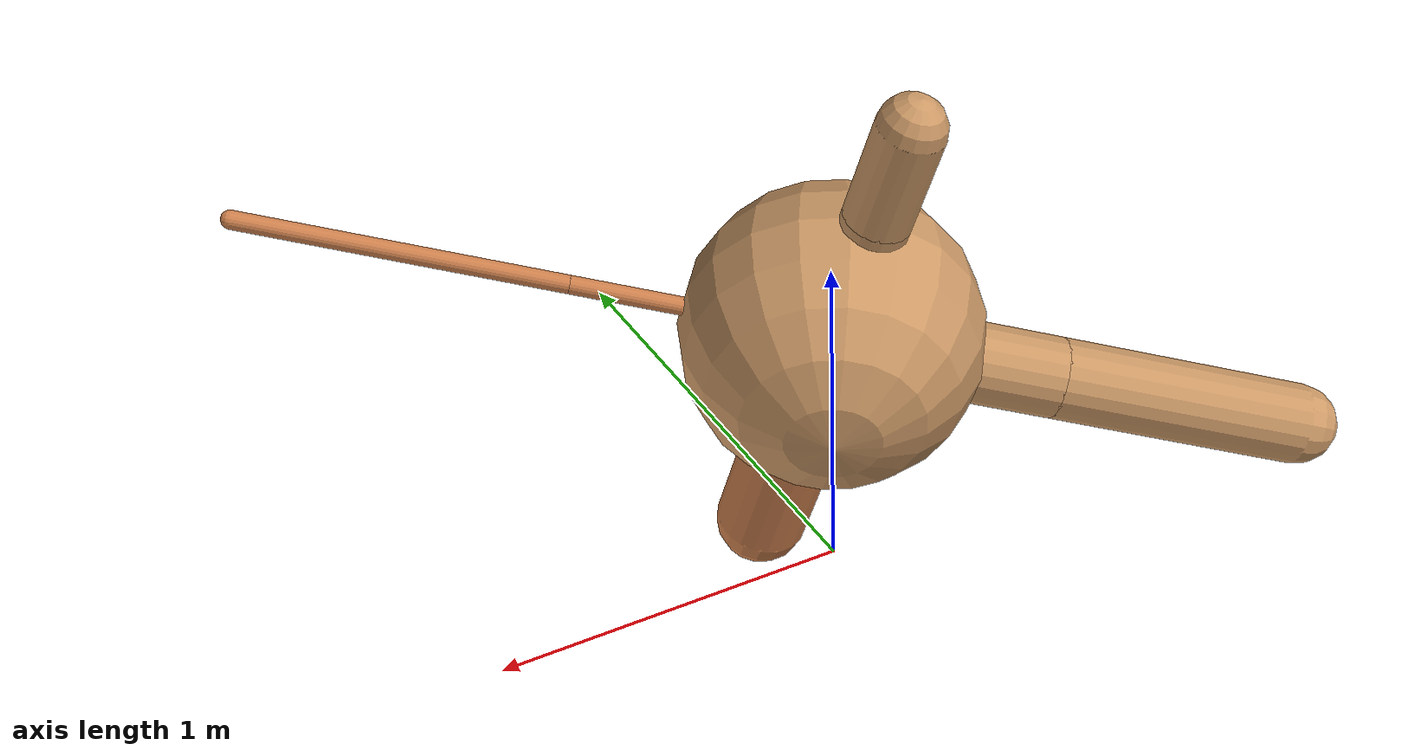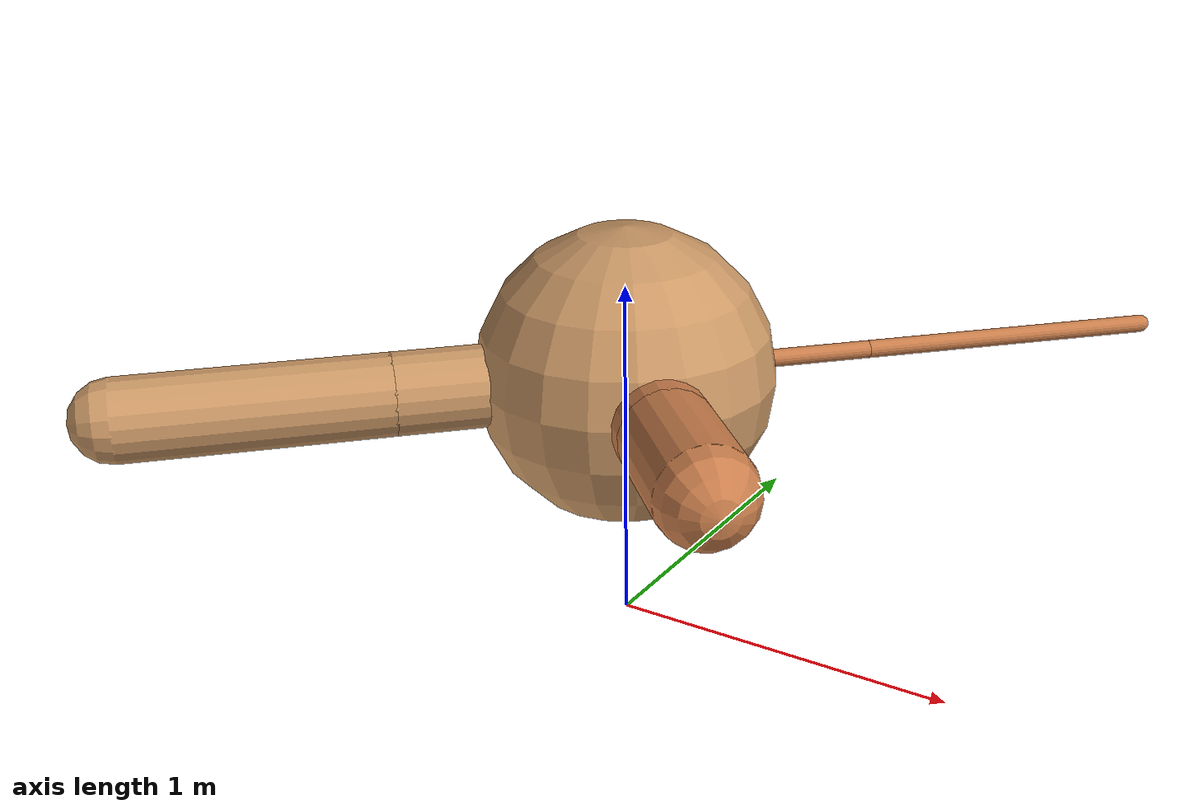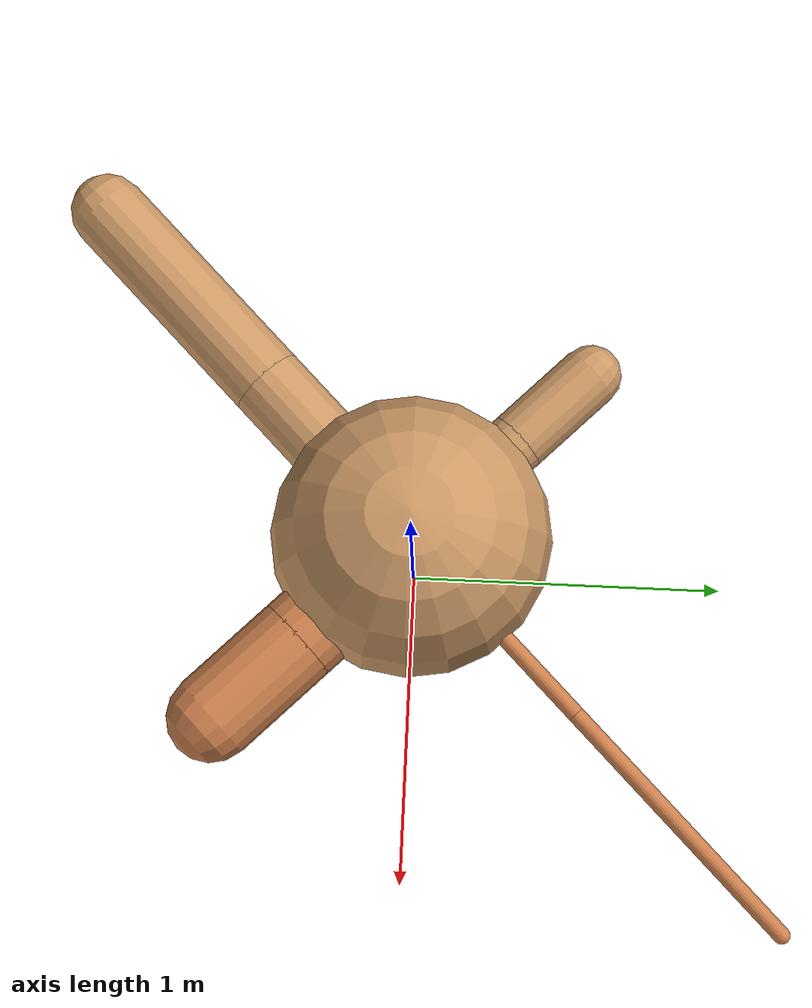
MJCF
<?xml version="1.0" ?>
<mujoco model="ant">

	<compiler angle="degree" coordinate="local" inertiafromgeom="true"/>

	<option integrator="RK4" timestep="0.01"/>

	<custom>

		<numeric data="0.0 0.0 0.55 1.0 0.0 0.0 0.0 0.0 1.0 0.0 -1.0 0.0 -1.0 0.0 1.0" name="init_qpos"/>

	</custom>

	<default>

		<joint armature="1" damping="1" limited="true"/>

		<geom conaffinity="0" condim="3" density="5.0" friction="1.5 0.1 0.1" margin="0.01" rgba="0.8 0.6 0.4 1"/>

	</default>

	<worldbody>

		<body name="torso" pos="0 0 0.75">

			<geom name="torso_geom" pos="0 0 0" size="0.4212973533362282" type="sphere"/>

			<!--joint armature="0" damping="0" limited="false" margin="0.01" name="root" pos="0 0 0" type="free"/-->

			<body name="front_left_leg" pos="0 0 0">

				<geom fromto="0 0 0 0.2 0.2 0" name="aux_1_geom" size="0.025393095198353092" type="capsule" rgba=".8 .5 .3 1"/>

				<body name="aux_1" pos="0.2 0.2 0">

					<joint axis="0 0 1" name="hip_1" pos="0.0 0.0 0.0" range="-40 40" type="hinge"/>

					<geom fromto="0 0 0 0.3089666049631484 0.3089666049631484 0" name="left_leg_geom" size="0.025393095198353092" type="capsule" rgba=".8 .5 .3 1"/>

					<body pos="0.3089666049631484 0.3089666049631484 0" name="front_left_foot">

						<joint axis="-1 1 0" name="ankle_1" pos="0.0 0.0 0.0" range="30 100" type="hinge"/>

						<geom fromto="0 0 0 0.6179332099262967 0.6179332099262967 0" name="left_ankle_geom" size="0.025393095198353092" type="capsule" rgba=".8 .5 .3 1"/>

					</body>

				</body>

			</body>

			<body name="front_right_leg" pos="0 0 0">

				<geom fromto="0 0 0 -0.2 0.2 0" name="aux_2_geom" size="0.0937784768115647" type="capsule"/>

				<body name="aux_2" pos="-0.2 0.2 0">

					<joint axis="0 0 1" name="hip_2" pos="0.0 0.0 0.0" range="-40 40" type="hinge"/>

					<geom fromto="0 0 0 -0.1055824475328418 0.1055824475328418 0" name="right_leg_geom" size="0.0937784768115647" type="capsule"/>

					<body pos="-0.1055824475328418 0.1055824475328418 0" name="front_right_foot">

						<joint axis="1 1 0" name="ankle_2" pos="0.0 0.0 0.0" range="-100 -30" type="hinge"/>

						<geom fromto="0 0 0 -0.2111648950656836 0.2111648950656836 0" name="right_ankle_geom" size="0.0937784768115647" type="capsule"/>

					</body>

				</body>

			</body>

			<body name="left_back_leg" pos="0 0 0">

				<geom fromto="0 0 0 -0.2 -0.2 0" name="aux_3_geom" size="0.1148212554658331" type="capsule"/>

				<body name="aux_3" pos="-0.2 -0.2 0">

					<joint axis="0 0 1" name="hip_3" pos="0.0 0.0 0.0" range="-40 40" type="hinge"/>

					<geom fromto="0 0 0 -0.25580681438768965 -0.25580681438768965 0" name="back_leg_geom" size="0.1148212554658331" type="capsule"/>

					<body pos="-0.25580681438768965 -0.25580681438768965 0" name="left_back_foot">

						<joint axis="-1 1 0" name="ankle_3" pos="0.0 0.0 0.0" range="-100 -30" type="hinge"/>

						<geom fromto="0 0 0 -0.5116136287753793 -0.5116136287753793 0" name="third_ankle_geom" size="0.1148212554658331" type="capsule"/>

					</body>

				</body>

			</body>

			<body name="right_back_leg" pos="0 0 0">

				<geom fromto="0 0 0 0.2 -0.2 0" name="aux_4_geom" size="0.1348282392932276" type="capsule" rgba=".8 .5 .3 1"/>

				<body name="aux_4" pos="0.2 -0.2 0">

					<joint axis="0 0 1" name="hip_4" pos="0.0 0.0 0.0" range="-40 40" type="hinge"/>

					<geom fromto="0 0 0 0.12148869545181347 -0.12148869545181347 0" name="rightback_leg_geom" size="0.1348282392932276" type="capsule" rgba=".8 .5 .3 1"/>

					<body pos="0.12148869545181347 -0.12148869545181347 0" name="right_back_foot">

						<joint axis="1 1 0" name="ankle_4" pos="0.0 0.0 0.0" range="30 100" type="hinge"/>

						<geom fromto="0 0 0 0.24297739090362694 -0.24297739090362694 0" name="fourth_ankle_geom" size="0.1348282392932276" type="capsule" rgba=".8 .5 .3 1"/>

					</body>

				</body>

			</body>

		</body>

	</worldbody>

	<actuator>

		<motor ctrllimited="true" ctrlrange="-1.0 1.0" joint="hip_4" gear="150"/>

		<motor ctrllimited="true" ctrlrange="-1.0 1.0" joint="ankle_4" gear="150"/>

		<motor ctrllimited="true" ctrlrange="-1.0 1.0" joint="hip_1" gear="150"/>

		<motor ctrllimited="true" ctrlrange="-1.0 1.0" joint="ankle_1" gear="150"/>

		<motor ctrllimited="true" ctrlrange="-1.0 1.0" joint="hip_2" gear="150"/>

		<motor ctrllimited="true" ctrlrange="-1.0 1.0" joint="ankle_2" gear="150"/>

		<motor ctrllimited="true" ctrlrange="-1.0 1.0" joint="hip_3" gear="150"/>

		<motor ctrllimited="true" ctrlrange="-1.0 1.0" joint="ankle_3" gear="150"/>

	</actuator>

</mujoco>
